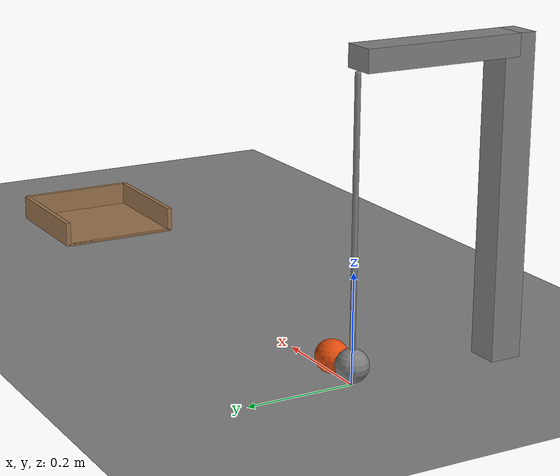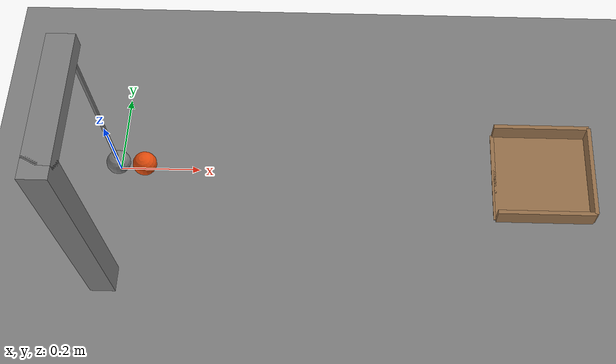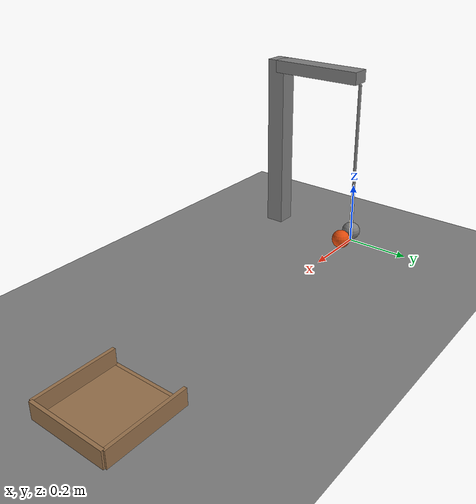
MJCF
<mujoco model="pendulum_strikes_ball_into_cup">
  <compiler angle="radian"/>
  <option timestep="0.002"/>
  <worldbody>
    <geom name="floor" type="plane" size="6 6 0.1" friction="0.8 0.005 0.0002"/>
    <geom name="pendulum_stand_arm" type="box" pos="0 -0.15 0.56" size="0.03 0.15 0.02"/>
    <geom name="pendulum_stand_post" type="box" pos="0 -0.3 0.29" size="0.03 0.03 0.29"/>
    <body name="pendulum" pos="0 0 0.535">
      <joint name="pivot" type="hinge" pos="0 0 0" axis="0 1 0"/>
      <geom name="pendulum_bob" type="sphere" pos="0 0 -0.5" size="0.03" mass="0.5"/>
      <geom name="pendulum_rod" type="capsule" size="0.005" fromto="0 0 0 0 0 -0.47" mass="0.02"/>
    </body>
    <body name="ball" pos="0.065 0 0.03">
      <freejoint/>
      <geom name="ball" type="sphere" pos="0 0 0" size="0.03" mass="0.05" condim="6" friction="0.8 0.001 0.0002" rgba="0.9 0.3 0.05 1"/>
    </body>
    <body name="cup">
      <geom name="cup_base" type="box" pos="1.065 0 0.0015" size="0.12 0.12 0.0015" friction="0.8 0.01 0.005" solref="0.01 1" rgba="0.6 0.45 0.3 1"/>
      <geom name="cup_near_wall" type="box" pos="0.945 0 0.0015" size="0.005 0.12 0.0015" friction="0.8 0.01 0.005" solref="0.01 1" rgba="0.6 0.45 0.3 1"/>
      <geom name="cup_far_wall" type="box" pos="1.185 0 0.025" size="0.005 0.12 0.025" friction="0.8 0.01 0.005" solref="0.01 1" rgba="0.6 0.45 0.3 1"/>
      <geom name="cup_left_wall" type="box" pos="1.065 0.12 0.025" size="0.12 0.005 0.025" friction="0.8 0.01 0.005" solref="0.01 1" rgba="0.6 0.45 0.3 1"/>
      <geom name="cup_right_wall" type="box" pos="1.065 -0.12 0.025" size="0.12 0.005 0.025" friction="0.8 0.01 0.005" solref="0.01 1" rgba="0.6 0.45 0.3 1"/>
    </body>
  </worldbody>
  <keyframe>
    <key name="start" qpos="0.610865 0.065 0 0.03 1 0 0 0" qvel="0 0 0 0 0 0 0"/>
  </keyframe>
</mujoco>
